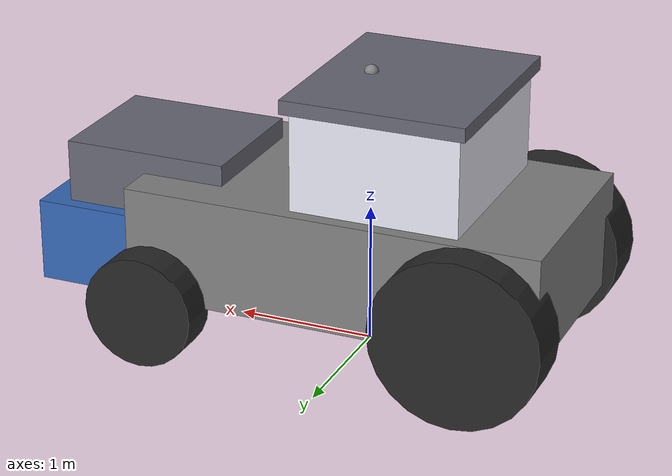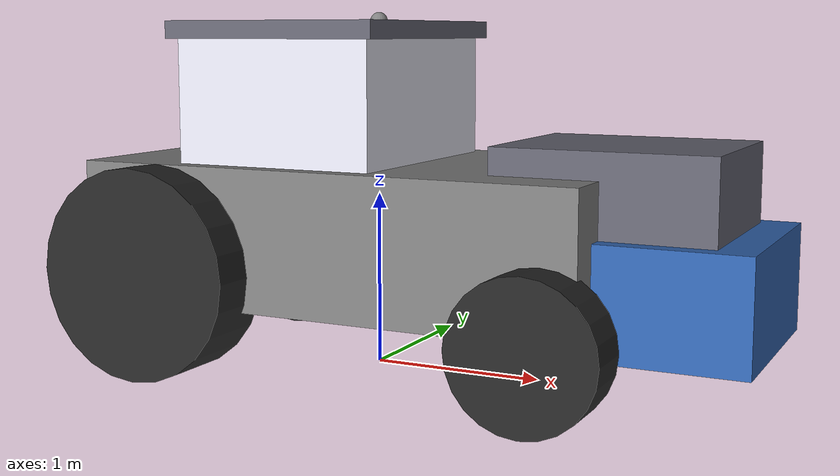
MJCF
<mujoco>
  <!-- Dynamic tractor with freejoint for full movement -->
  <compiler angle="degree"/>

  <default>
    <joint damping="1"/>
    <geom friction="1.5 0.5 0.1" condim="3"/>
  </default>

  <asset>
    <material name="tractor_body" rgba="0.2 0.4 0.7 1"/>
    <material name="tractor_white" rgba="0.9 0.9 0.95 1"/>
    <material name="tractor_wheel" rgba="0.15 0.15 0.15 1"/>
    <material name="tractor_metal" rgba="0.4 0.4 0.45 1"/>
  </asset>

  <worldbody>
    <body name="tractor_base">
      <!-- FREEJOINT: full 6-DOF movement in world -->
      <freejoint name="tractor_root"/>

      <!-- Main chassis with proper inertia -->
      <inertial pos="0 0 0.5" mass="1200" diaginertia="300 500 200"/>

      <geom name="chassis" type="box" size="1.5 0.8 0.4" pos="0 0 0.8"/>
      <geom name="hood" type="box" size="0.8 0.6 0.3" pos="1.5 0 0.6" material="tractor_body"/>
      <geom name="cab_base" type="box" size="0.6 0.7 0.5" pos="-0.3 0 1.4" material="tractor_white"/>
      <geom name="cab_roof" type="box" size="0.65 0.75 0.05" pos="-0.3 0 1.95" material="tractor_metal"/>
      <geom name="engine" type="box" size="0.6 0.5 0.35" pos="1.5 0 1.0" material="tractor_metal"/>

      <!-- Sensors attached to tractor body -->
      <site name="imu_site" pos="0 0 2.0" size="0.05"/>
      <camera name="driver_cam" pos="0.5 0 1.8" euler="0 -5 0" fovy="70"/>
      <camera name="rear_cam" pos="-1.5 0 1.5" euler="0 -10 180" fovy="90"/>

      <!-- FRONT WHEELS -->
      <body name="wheel_fl" pos="1.3 0.9 0.4">
        <inertial pos="0 0 0" mass="30" diaginertia="1 1 1"/>
        <joint name="axle_fl" type="hinge" axis="0 1 0"/>
        <geom type="cylinder" size="0.4 0.15" euler="90 0 0" material="tractor_wheel"/>
      </body>

      <body name="wheel_fr" pos="1.3 -0.9 0.4">
        <inertial pos="0 0 0" mass="30" diaginertia="1 1 1"/>
        <joint name="axle_fr" type="hinge" axis="0 1 0"/>
        <geom type="cylinder" size="0.4 0.15" euler="90 0 0" material="tractor_wheel"/>
      </body>

      <!-- REAR WHEELS (larger, drive wheels) -->
      <body name="wheel_rl" pos="-1.0 0.85 0.6">
        <inertial pos="0 0 0" mass="60" diaginertia="3 3 3"/>
        <joint name="axle_rl" type="hinge" axis="0 1 0"/>
        <geom type="cylinder" size="0.6 0.2" euler="90 0 0" material="tractor_wheel"/>
      </body>

      <body name="wheel_rr" pos="-1.0 -0.85 0.6">
        <inertial pos="0 0 0" mass="60" diaginertia="3 3 3"/>
        <joint name="axle_rr" type="hinge" axis="0 1 0"/>
        <geom type="cylinder" size="0.6 0.2" euler="90 0 0" material="tractor_wheel"/>
      </body>
    </body>
  </worldbody>

  <!-- ACTUATORS: velocity-controlled wheel motors -->
  <actuator>
    <velocity name="motor_rl" joint="axle_rl" kv="500"/>
    <velocity name="motor_rr" joint="axle_rr" kv="500"/>
  </actuator>

  <!-- SENSORS -->
  <sensor>
    <accelerometer name="imu_accel" site="imu_site"/>
    <gyro name="imu_gyro" site="imu_site"/>
    <velocimeter name="velocity" site="imu_site"/>
    <jointvel name="encoder_rl" joint="axle_rl"/>
    <jointvel name="encoder_rr" joint="axle_rr"/>
  </sensor>
</mujoco>
